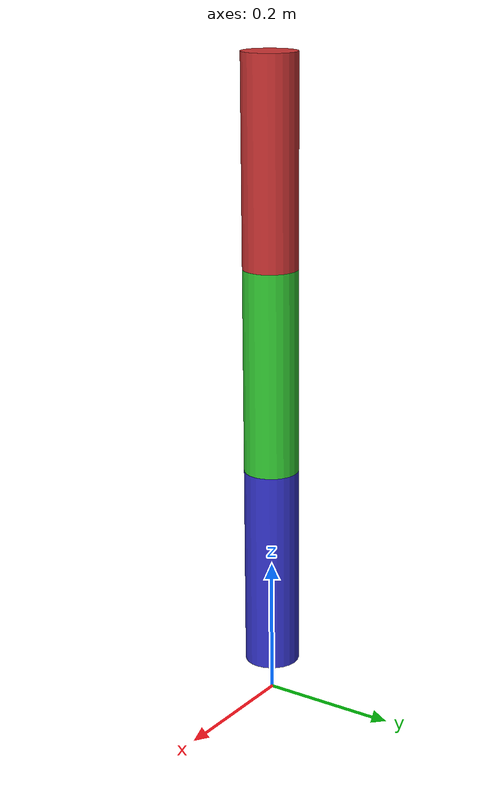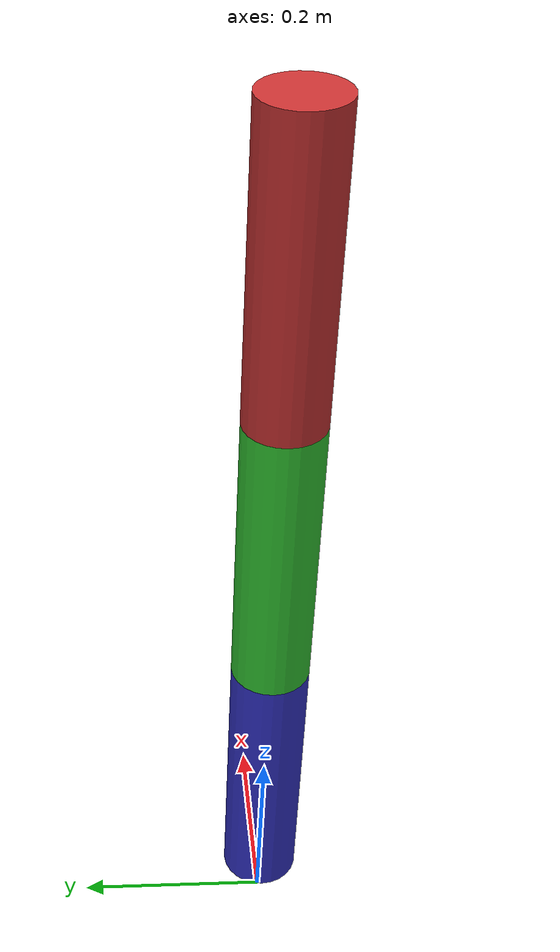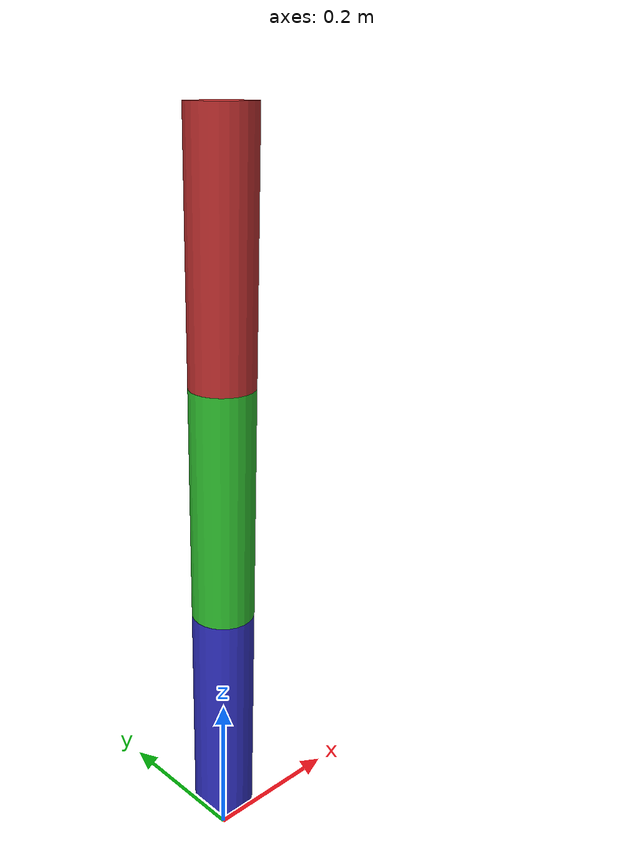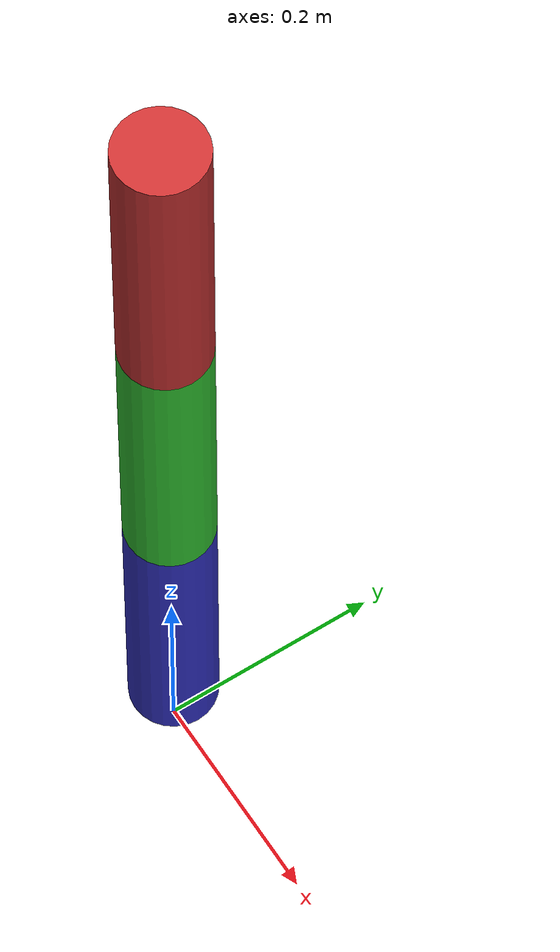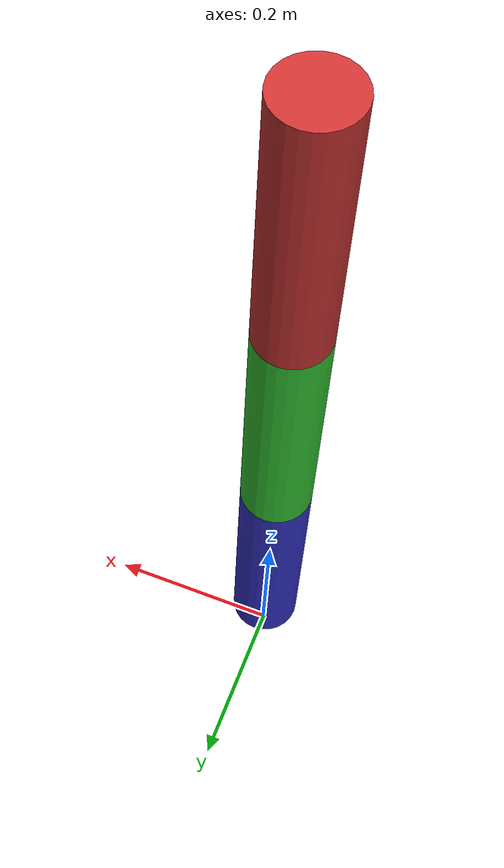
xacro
<?xml version="1.0"?>
<robot xmlns:xacro="http://www.ros.org/wiki/xacro" name="dof6_robot">
  <xacro:arg name="enable_joint1" default="true" />
  <xacro:arg name="enable_joint2" default="true" />
  <xacro:arg name="enable_joint3" default="true" />

  <!-- Import robot ros2_control description -->
  <xacro:include filename = "$(find dof6robot_control)/description/dof6robot.description.xacro" />
  <xacro:robot_description enable_joint1="$(arg enable_joint1)" enable_joint2="$(arg enable_joint2)" enable_joint3="$(arg enable_joint3)" />

    <!-- Import robot ros2_control description -->
  <xacro:include filename = "$(find dof6robot_control)/ros2_control/dof6robot.ros2_control.xacro" />
  <xacro:robot_ros2_control name="robot" />

  <link name="world"/>
</robot>

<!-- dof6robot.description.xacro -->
<robot xmlns:xacro="http://www.ros.org/wiki/xacro" name="robot_description">

  <xacro:macro name="robot_description" params="enable_joint1 enable_joint2 enable_joint3" >

    <!-- Joint 1 -->
    <xacro:if value="${enable_joint1}" >
      <link name="link1">
        <visual>
          <geometry>
            <cylinder length="0.3" radius="0.04"/>
          </geometry>
          <origin xyz="0 0 0.15" rpy="0 0 0"/>
          <material name="blue">
            <color rgba="0.2 0.2 0.8 1"/>
          </material>
        </visual>
      </link>
      <joint name="joint1" type="revolute">
        <parent link="world"/>
        <child link="link1"/>
        <origin xyz="0 0 0.05" rpy="0 0 0"/>
        <axis xyz="0 0 1"/>
        <limit lower="-1.57" upper="1.57" effort="10" velocity="2"/>
      </joint>
    </xacro:if>

    <!-- Joint 2 -->
    <xacro:if value="${enable_joint2}" >
      <link name="link2">
        <visual>
          <geometry>
            <cylinder length="0.3" radius="0.04"/>
          </geometry>
          <origin xyz="0 0 0.15" rpy="0 0 0"/>
          <material name="green">
            <color rgba="0.2 0.8 0.2 1"/>
          </material>
        </visual>
      </link>
      <joint name="joint2" type="revolute">
        <parent link="link1"/>
        <child link="link2"/>
        <origin xyz="0 0 0.3" rpy="0 0 0"/>
        <axis xyz="0 1 0"/>
        <limit lower="-1.57" upper="1.57" effort="10" velocity="2"/>
      </joint>
    </xacro:if>

      <!-- Joint 3 -->
    <xacro:if value="${enable_joint3}" >
      <link name="link3">
        <visual>
          <geometry>
            <cylinder length="0.3" radius="0.04"/>
          </geometry>
          <origin xyz="0 0 0.15" rpy="0 0 0"/>
          <material name="red">
            <color rgba="0.8 0.2 0.2 1"/>
          </material>
        </visual>
      </link>
      <joint name="joint3" type="revolute">
        <parent link="link2"/>
        <child link="link3"/>
        <origin xyz="0 0 0.3" rpy="0 0 0"/>
        <axis xyz="0 1 0"/>
        <limit lower="-1.57" upper="1.57" effort="10" velocity="2"/>
      </joint>
    </xacro:if>

  </xacro:macro>

</robot>
